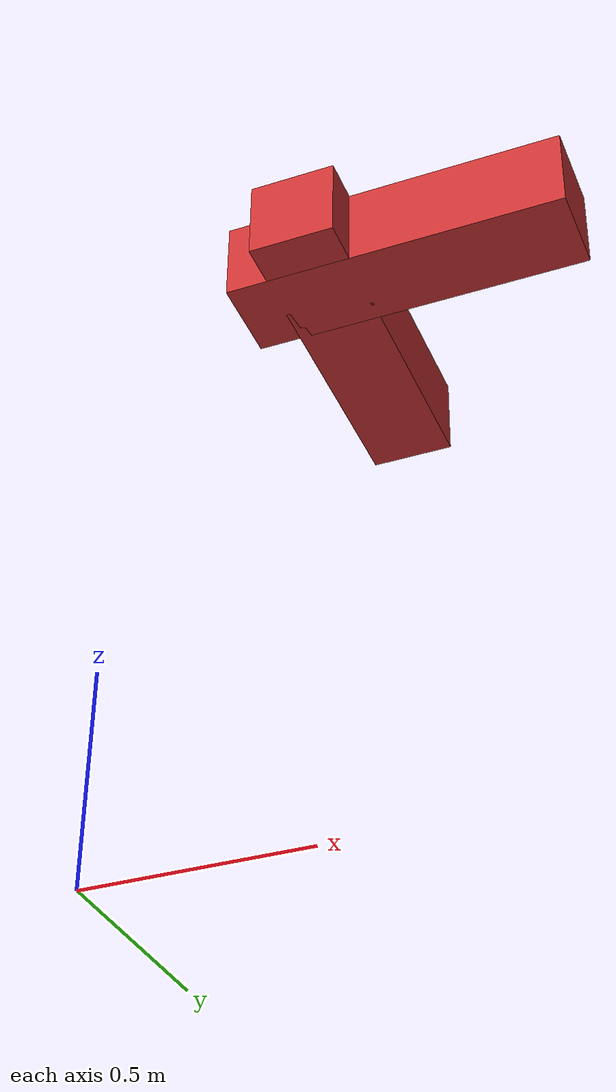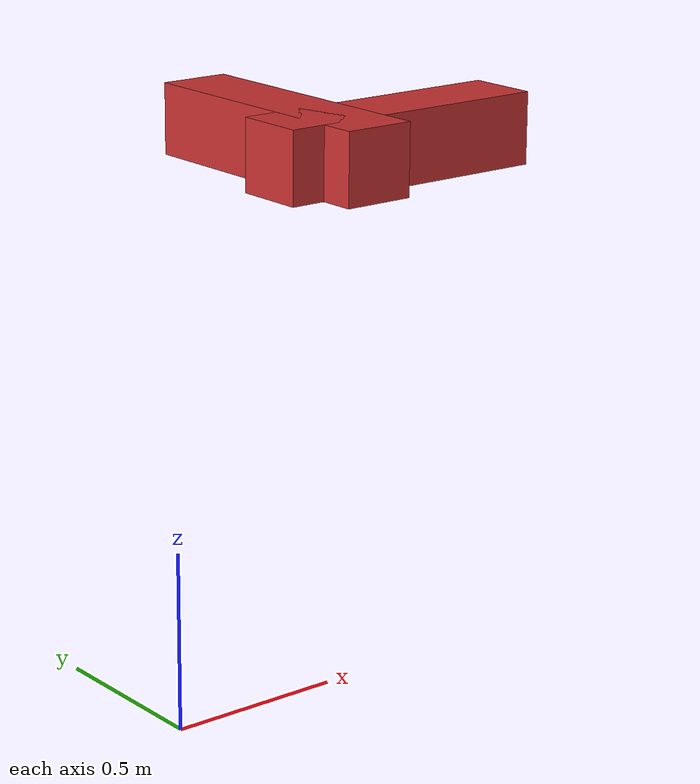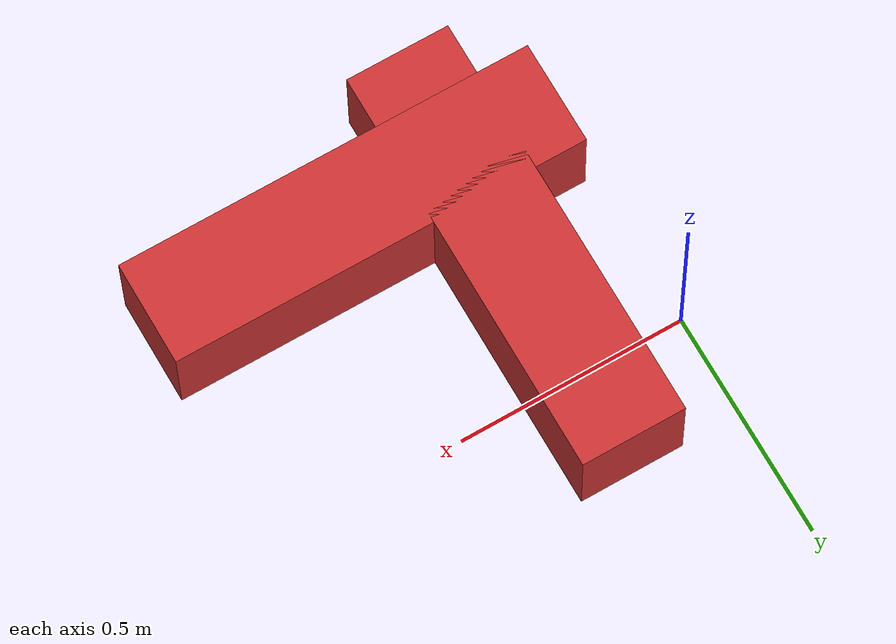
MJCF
<mujoco>
  <option gravity="0 0 -9.81" />
  <worldbody>
    <body name="object_2" pos="0 0 2" />
    <body name="object_3" pos="1 0 2" />
    <body name="object_1" pos="0.5 0 1.5">
      <geom type="box" size="0.1 0.4 0.1" pos="0 0.2 0" density="1" rgba="0.8 0.2 0.2 1" />
      <geom type="box" size="0.4 0.1 0.1" pos="0.2 0 0" density="1" rgba="0.8 0.2 0.2 1" />
      <joint type="ball" name="object_1_joint" limited="false" />
    </body>
  <body name="ground" pos="0.0 0.0 0.0"><geom type="sphere" size="0.0" rgba="0.5 0.5 0.5 1.0" /></body></worldbody>
<joint name="joint_hook_object_1" type="revolute" body1="hook" body2="object_1" /><joint name="joint_hook1_object_1" type="revolute" body1="hook1" body2="object_1" /><joint name="joint_hook_A_object_1" type="revolute" body1="hook_A" body2="object_1" /><joint name="joint_hook_B_object_1" type="revolute" body1="hook_B" body2="object_1" /></mujoco>
